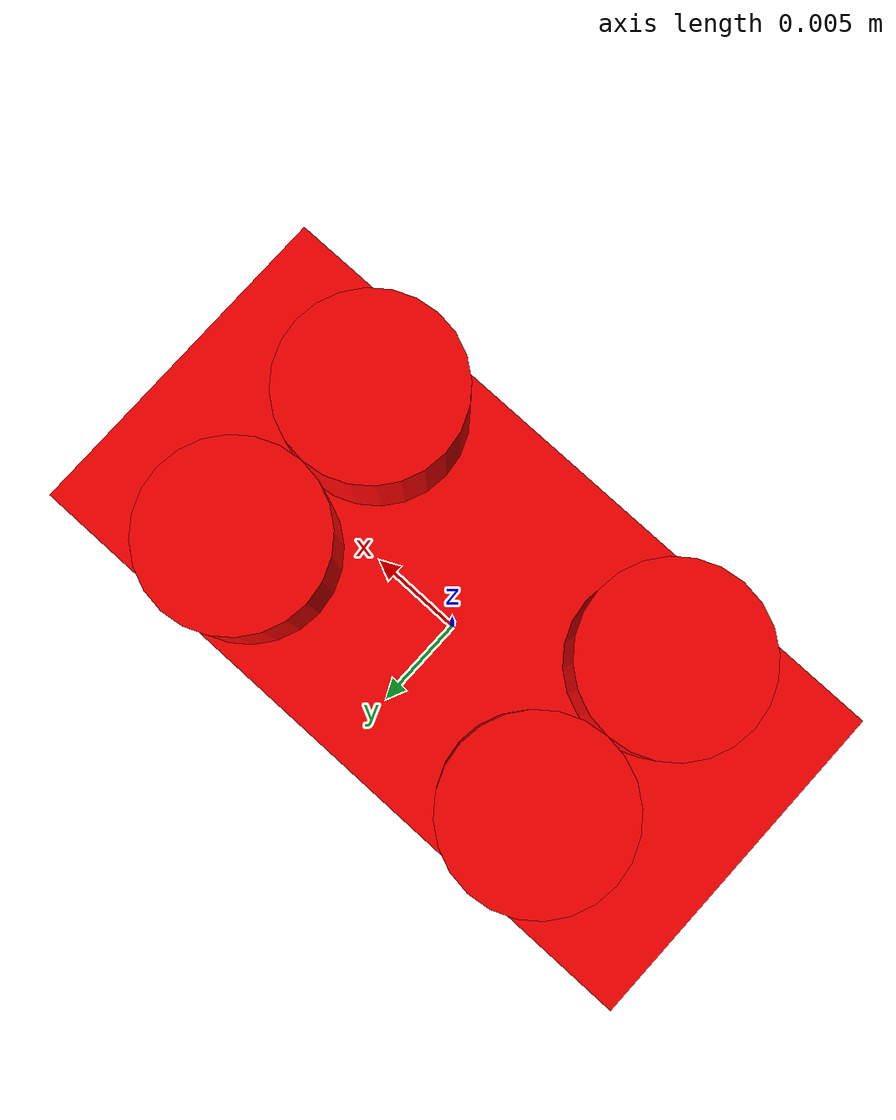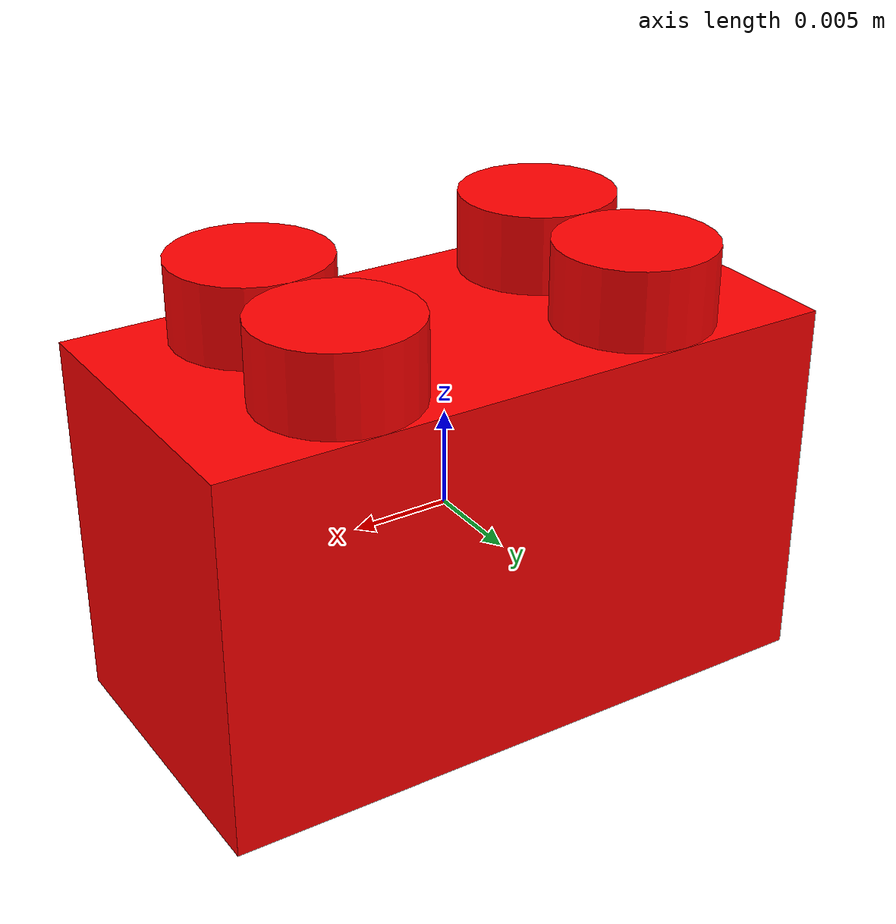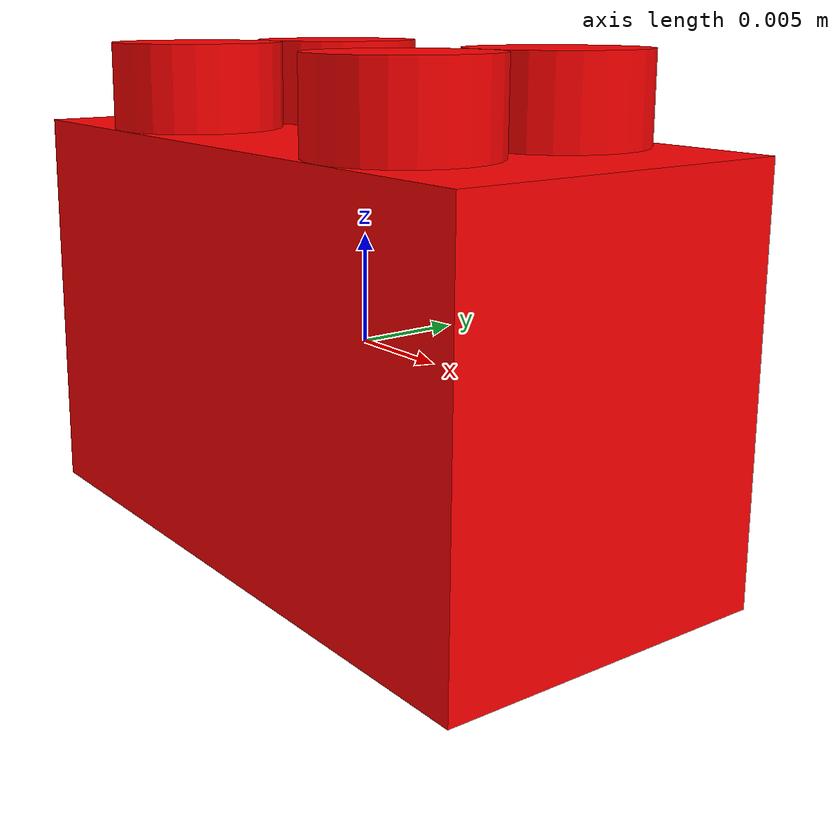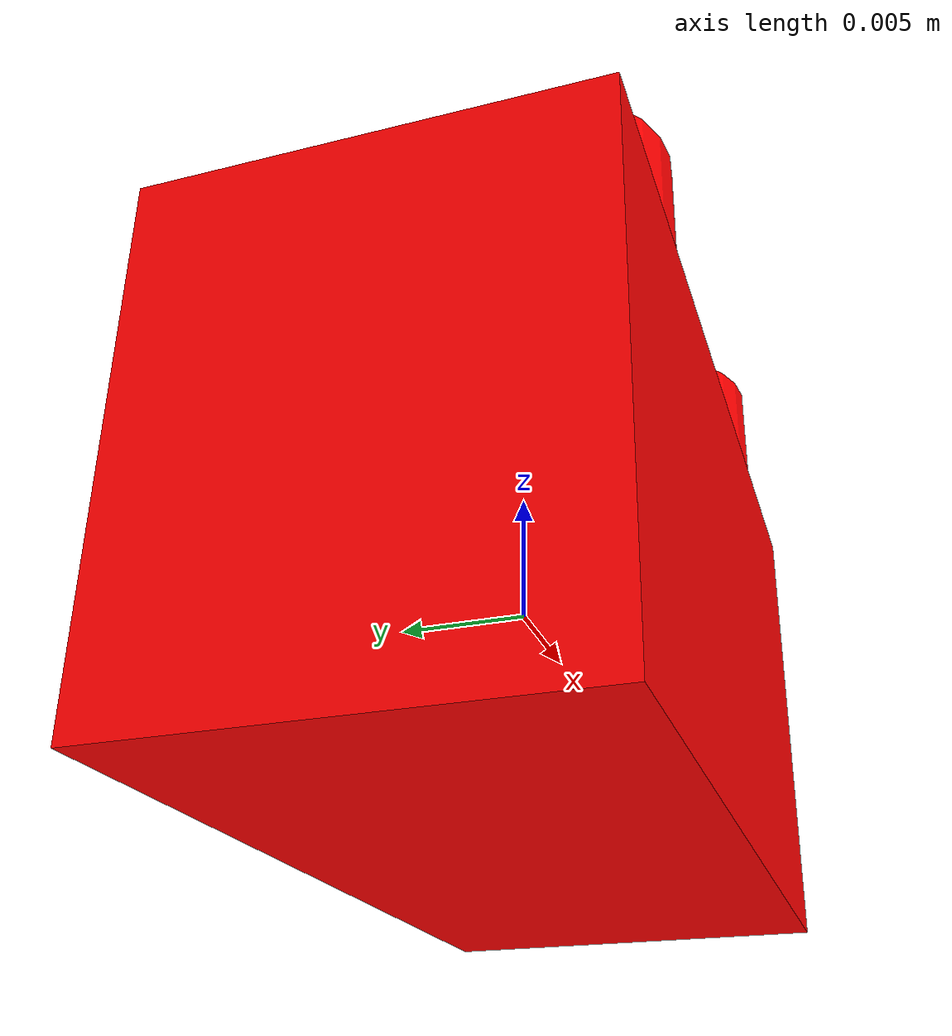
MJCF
<mujoco model="lego_block">
  <compiler angle="radian" />
  <worldbody>
    <body name="block">
      <freejoint name="block_joint" />
      <geom type="box" size="0.016 0.008 0.0095" mass="0.01" rgba="1 0 0 1" />
      <geom type="cylinder" size="0.004 0.002" pos="-0.008 -0.004 0.0115" mass="0.001" rgba="1 0 0 1" />
      <geom type="cylinder" size="0.004 0.002" pos="0.008 -0.004 0.0115" mass="0.001" rgba="1 0 0 1" />
      <geom type="cylinder" size="0.004 0.002" pos="-0.008 0.004 0.0115" mass="0.001" rgba="1 0 0 1" />
      <geom type="cylinder" size="0.004 0.002" pos="0.008 0.004 0.0115" mass="0.001" rgba="1 0 0 1" />
    </body>
  </worldbody>
</mujoco>
